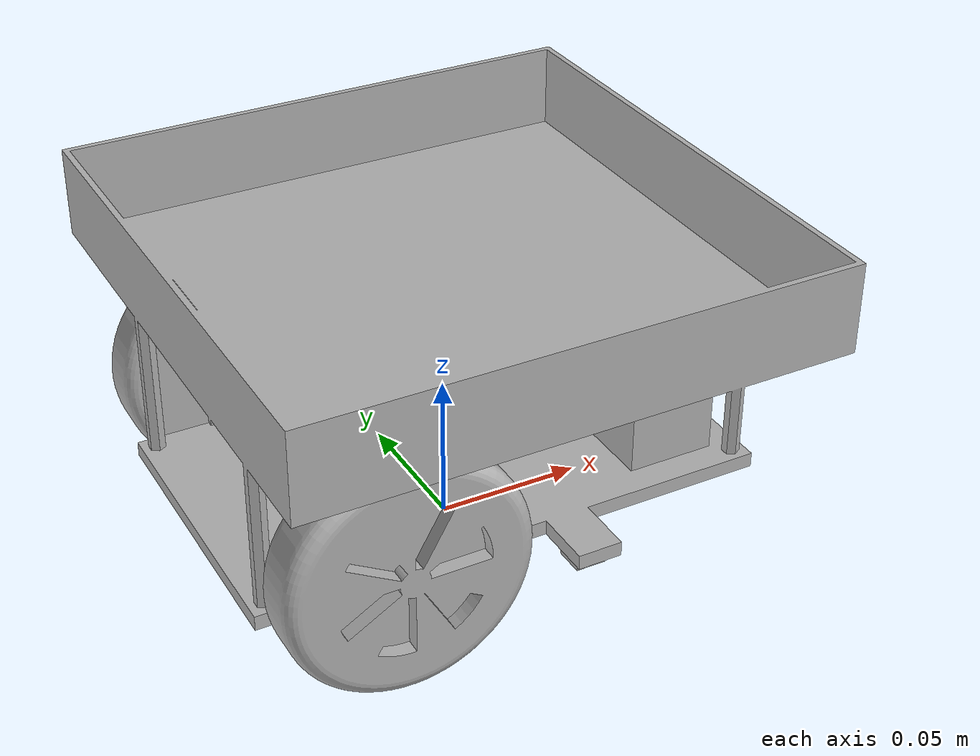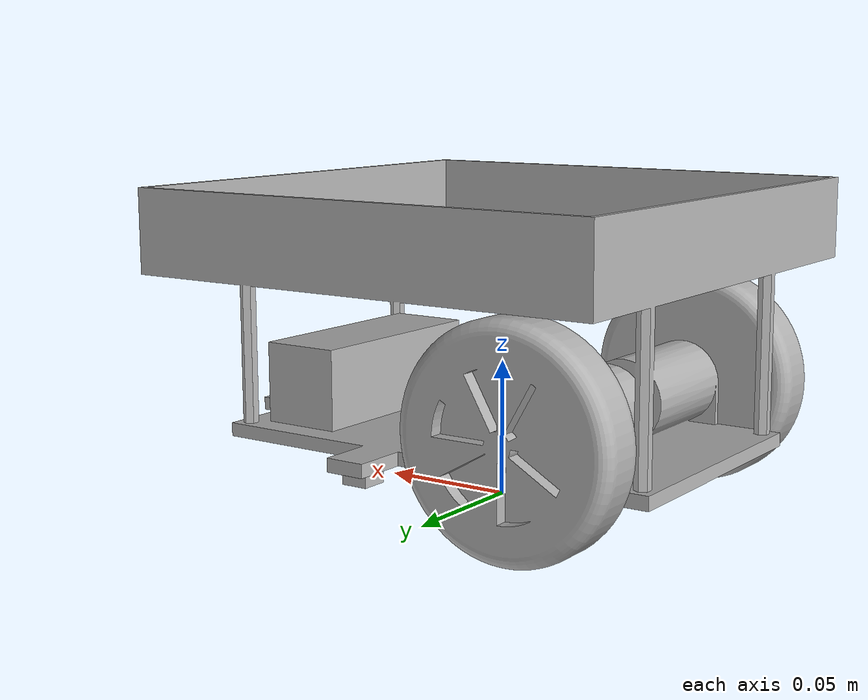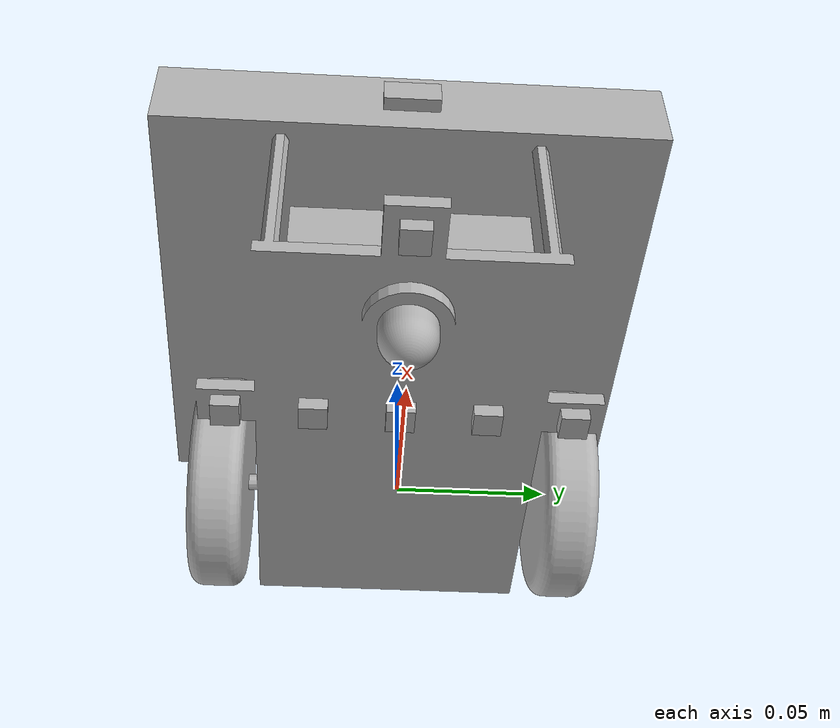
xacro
<?xml version="1.0" ?>
<robot name="autobot" xmlns:xacro="http://www.ros.org/wiki/xacro">

<xacro:include filename="$(find autobot_description)/urdf/materials.xacro" />
<xacro:include filename="$(find autobot_description)/urdf/autobot.trans" />
<xacro:include filename="$(find autobot_description)/urdf/autobot.gazebo" />
<link name="base_link">
  <inertial>
    <origin rpy="0 0 0" xyz="-0.009568145355348395 -1.0098438175876538e-16 0.054020432435981744"/>
    <mass value="0.2864000453601699"/>
    <inertia ixx="0.000861" ixy="0.0" ixz="-2.9e-05" iyy="0.001138" iyz="-0.0" izz="0.001424"/>
  </inertial>
  <visual>
    <origin rpy="0 0 0" xyz="0 0 0"/>
    <geometry>
      <mesh filename="package://autobot_description/meshes/base_link.stl" scale="0.001 0.001 0.001"/>
    </geometry>
    <material name="silver"/>
  </visual>
  <collision>
    <origin rpy="0 0 0" xyz="0 0 0"/>
    <geometry>
      <mesh filename="package://autobot_description/meshes/base_link.stl" scale="0.001 0.001 0.001"/>
    </geometry>
  </collision>
</link>

<link name="right_wheel_1">
  <inertial>
    <origin rpy="0 0 0" xyz="0.0 -0.009620772373434651 0.0"/>
    <mass value="0.08667330868237295"/>
    <inertia ixx="3.7e-05" ixy="0.0" ixz="0.0" iyy="7e-05" iyz="-0.0" izz="3.7e-05"/>
  </inertial>
  <visual>
    <origin rpy="0 0 0" xyz="0.0475 0.055 -0.04"/>
    <geometry>
      <mesh filename="package://autobot_description/meshes/right_wheel_1.stl" scale="0.001 0.001 0.001"/>
    </geometry>
    <material name="silver"/>
  </visual>
  <collision>
    <origin rpy="0 0 0" xyz="0.0475 0.055 -0.04"/>
    <geometry>
      <mesh filename="package://autobot_description/meshes/right_wheel_1.stl" scale="0.001 0.001 0.001"/>
    </geometry>
  </collision>
</link>

<link name="left_wheel_1">
  <inertial>
    <origin rpy="0 0 0" xyz="0.0 0.009620772373434651 0.0"/>
    <mass value="0.08667330868237297"/>
    <inertia ixx="3.7e-05" ixy="-0.0" ixz="0.0" iyy="7e-05" iyz="0.0" izz="3.7e-05"/>
  </inertial>
  <visual>
    <origin rpy="0 0 0" xyz="0.0475 -0.055 -0.04"/>
    <geometry>
      <mesh filename="package://autobot_description/meshes/left_wheel_1.stl" scale="0.001 0.001 0.001"/>
    </geometry>
    <material name="silver"/>
  </visual>
  <collision>
    <origin rpy="0 0 0" xyz="0.0475 -0.055 -0.04"/>
    <geometry>
      <mesh filename="package://autobot_description/meshes/left_wheel_1.stl" scale="0.001 0.001 0.001"/>
    </geometry>
  </collision>
</link>

<link name="caster_1">
  <inertial>
    <origin rpy="0 0 0" xyz="1.3877787807814457e-17 2.4232797573055368e-18 -0.006071428571428568"/>
    <mass value="0.028771752719126516"/>
    <inertia ixx="1e-06" ixy="0.0" ixz="0.0" iyy="1e-06" iyz="0.0" izz="1e-06"/>
  </inertial>
  <visual>
    <origin rpy="0 0 0" xyz="-0.0625 -0.0 -0.015"/>
    <geometry>
      <mesh filename="package://autobot_description/meshes/caster_1.stl" scale="0.001 0.001 0.001"/>
    </geometry>
    <material name="silver"/>
  </visual>
  <collision>
    <origin rpy="0 0 0" xyz="-0.0625 -0.0 -0.015"/>
    <geometry>
      <mesh filename="package://autobot_description/meshes/caster_1.stl" scale="0.001 0.001 0.001"/>
    </geometry>
  </collision>
</link>

<link name="battery_1">
  <inertial>
    <origin rpy="0 0 0" xyz="0.0 0.0 0.015"/>
    <mass value="0.5651999999999999"/>
    <inertia ixx="0.000344" ixy="0.0" ixz="-0.0" iyy="8.5e-05" iyz="0.0" izz="0.000344"/>
  </inertial>
  <visual>
    <origin rpy="0 0 0" xyz="-0.0625 -0.0 -0.025"/>
    <geometry>
      <mesh filename="package://autobot_description/meshes/battery_1.stl" scale="0.001 0.001 0.001"/>
    </geometry>
    <material name="silver"/>
  </visual>
  <collision>
    <origin rpy="0 0 0" xyz="-0.0625 -0.0 -0.025"/>
    <geometry>
      <mesh filename="package://autobot_description/meshes/battery_1.stl" scale="0.001 0.001 0.001"/>
    </geometry>
  </collision>
</link>

<link name="forward_sensor_1">
  <inertial>
    <origin rpy="0 0 0" xyz="0.0025000000000000022 0.0 0.0"/>
    <mass value="0.00785"/>
    <inertia ixx="0.0" ixy="0.0" ixz="0.0" iyy="0.0" iyz="0.0" izz="0.0"/>
  </inertial>
  <visual>
    <origin rpy="0 0 0" xyz="-0.09 -0.0 -0.1"/>
    <geometry>
      <mesh filename="package://autobot_description/meshes/forward_sensor_1.stl" scale="0.001 0.001 0.001"/>
    </geometry>
    <material name="silver"/>
  </visual>
  <collision>
    <origin rpy="0 0 0" xyz="-0.09 -0.0 -0.1"/>
    <geometry>
      <mesh filename="package://autobot_description/meshes/forward_sensor_1.stl" scale="0.001 0.001 0.001"/>
    </geometry>
  </collision>
</link>

<link name="box_sensor_1">
  <inertial>
    <origin rpy="0 0 0" xyz="0.0024999999999999883 0.0 0.000999999999999987"/>
    <mass value="0.00785"/>
    <inertia ixx="0.0" ixy="0.0" ixz="0.0" iyy="0.0" iyz="0.0" izz="0.0"/>
  </inertial>
  <visual>
    <origin rpy="0 0 0" xyz="0.088 -0.0 -0.1"/>
    <geometry>
      <mesh filename="package://autobot_description/meshes/box_sensor_1.stl" scale="0.001 0.001 0.001"/>
    </geometry>
    <material name="silver"/>
  </visual>
  <collision>
    <origin rpy="0 0 0" xyz="0.088 -0.0 -0.1"/>
    <geometry>
      <mesh filename="package://autobot_description/meshes/box_sensor_1.stl" scale="0.001 0.001 0.001"/>
    </geometry>
  </collision>
</link>

<link name="color_sensor_1">
  <inertial>
    <origin rpy="0 0 0" xyz="0.0 -1.7763568394002505e-17 -0.0024999999999999988"/>
    <mass value="0.003925"/>
    <inertia ixx="0.0" ixy="-0.0" ixz="0.0" iyy="0.0" iyz="-0.0" izz="0.0"/>
  </inertial>
  <visual>
    <origin rpy="0 0 0" xyz="-0.0975 0.0 -0.02"/>
    <geometry>
      <mesh filename="package://autobot_description/meshes/color_sensor_1.stl" scale="0.001 0.001 0.001"/>
    </geometry>
    <material name="silver"/>
  </visual>
  <collision>
    <origin rpy="0 0 0" xyz="-0.0975 0.0 -0.02"/>
    <geometry>
      <mesh filename="package://autobot_description/meshes/color_sensor_1.stl" scale="0.001 0.001 0.001"/>
    </geometry>
  </collision>
</link>

<link name="middle_sensor_1">
  <inertial>
    <origin rpy="0 0 0" xyz="0.0 -1.7763568394002505e-17 -0.0024999999999999988"/>
    <mass value="0.003925"/>
    <inertia ixx="0.0" ixy="-0.0" ixz="0.0" iyy="0.0" iyz="-0.0" izz="0.0"/>
  </inertial>
  <visual>
    <origin rpy="0 0 0" xyz="-0.0175 0.0 -0.02"/>
    <geometry>
      <mesh filename="package://autobot_description/meshes/middle_sensor_1.stl" scale="0.001 0.001 0.001"/>
    </geometry>
    <material name="silver"/>
  </visual>
  <collision>
    <origin rpy="0 0 0" xyz="-0.0175 0.0 -0.02"/>
    <geometry>
      <mesh filename="package://autobot_description/meshes/middle_sensor_1.stl" scale="0.001 0.001 0.001"/>
    </geometry>
  </collision>
</link>

<link name="left_sensor_1">
  <inertial>
    <origin rpy="0 0 0" xyz="0.0 0.0 -0.0024999999999999988"/>
    <mass value="0.003925"/>
    <inertia ixx="0.0" ixy="0.0" ixz="0.0" iyy="0.0" iyz="0.0" izz="0.0"/>
  </inertial>
  <visual>
    <origin rpy="0 0 0" xyz="-0.0175 -0.03 -0.02"/>
    <geometry>
      <mesh filename="package://autobot_description/meshes/left_sensor_1.stl" scale="0.001 0.001 0.001"/>
    </geometry>
    <material name="silver"/>
  </visual>
  <collision>
    <origin rpy="0 0 0" xyz="-0.0175 -0.03 -0.02"/>
    <geometry>
      <mesh filename="package://autobot_description/meshes/left_sensor_1.stl" scale="0.001 0.001 0.001"/>
    </geometry>
  </collision>
</link>

<link name="right_sensor_1">
  <inertial>
    <origin rpy="0 0 0" xyz="0.0 0.0 -0.0024999999999999988"/>
    <mass value="0.003925"/>
    <inertia ixx="0.0" ixy="-0.0" ixz="0.0" iyy="0.0" iyz="-0.0" izz="0.0"/>
  </inertial>
  <visual>
    <origin rpy="0 0 0" xyz="-0.0175 0.03 -0.02"/>
    <geometry>
      <mesh filename="package://autobot_description/meshes/right_sensor_1.stl" scale="0.001 0.001 0.001"/>
    </geometry>
    <material name="silver"/>
  </visual>
  <collision>
    <origin rpy="0 0 0" xyz="-0.0175 0.03 -0.02"/>
    <geometry>
      <mesh filename="package://autobot_description/meshes/right_sensor_1.stl" scale="0.001 0.001 0.001"/>
    </geometry>
  </collision>
</link>

<link name="extreme_left_sensor_1">
  <inertial>
    <origin rpy="0 0 0" xyz="0.0 0.0 -0.0024999999999999988"/>
    <mass value="0.003925"/>
    <inertia ixx="0.0" ixy="0.0" ixz="0.0" iyy="0.0" iyz="0.0" izz="0.0"/>
  </inertial>
  <visual>
    <origin rpy="0 0 0" xyz="-0.0175 -0.06 -0.02"/>
    <geometry>
      <mesh filename="package://autobot_description/meshes/extreme_left_sensor_1.stl" scale="0.001 0.001 0.001"/>
    </geometry>
    <material name="silver"/>
  </visual>
  <collision>
    <origin rpy="0 0 0" xyz="-0.0175 -0.06 -0.02"/>
    <geometry>
      <mesh filename="package://autobot_description/meshes/extreme_left_sensor_1.stl" scale="0.001 0.001 0.001"/>
    </geometry>
  </collision>
</link>

<link name="extreme_right_sensor_1">
  <inertial>
    <origin rpy="0 0 0" xyz="0.0 0.0 -0.0024999999999999988"/>
    <mass value="0.003925"/>
    <inertia ixx="0.0" ixy="-0.0" ixz="0.0" iyy="0.0" iyz="-0.0" izz="0.0"/>
  </inertial>
  <visual>
    <origin rpy="0 0 0" xyz="-0.0175 0.06 -0.02"/>
    <geometry>
      <mesh filename="package://autobot_description/meshes/extreme_right_sensor_1.stl" scale="0.001 0.001 0.001"/>
    </geometry>
    <material name="silver"/>
  </visual>
  <collision>
    <origin rpy="0 0 0" xyz="-0.0175 0.06 -0.02"/>
    <geometry>
      <mesh filename="package://autobot_description/meshes/extreme_right_sensor_1.stl" scale="0.001 0.001 0.001"/>
    </geometry>
  </collision>
</link>

<joint name="right_motor" type="continuous">
  <origin rpy="0 0 0" xyz="-0.0475 -0.055 0.04"/>
  <parent link="base_link"/>
  <child link="right_wheel_1"/>
  <axis xyz="0.0 -1.0 0.0"/>
</joint>

<joint name="left_motor" type="continuous">
  <origin rpy="0 0 0" xyz="-0.0475 0.055 0.04"/>
  <parent link="base_link"/>
  <child link="left_wheel_1"/>
  <axis xyz="0.0 1.0 0.0"/>
</joint>

<joint name="caster_joint" type="fixed">
  <origin rpy="0 0 0" xyz="0.0625 0.0 0.015"/>
  <parent link="base_link"/>
  <child link="caster_1"/>
</joint>

<joint name="battery_joint" type="fixed">
  <origin rpy="0 0 0" xyz="0.0625 0.0 0.025"/>
  <parent link="base_link"/>
  <child link="battery_1"/>
</joint>

<joint name="frontsensor_joint" type="fixed">
  <origin rpy="0 0 0" xyz="0.09 0.0 0.1"/>
  <parent link="base_link"/>
  <child link="forward_sensor_1"/>
</joint>

<joint name="boxsensor_joint" type="fixed">
  <origin rpy="0 0 0" xyz="-0.088 0.0 0.1"/>
  <parent link="base_link"/>
  <child link="box_sensor_1"/>
</joint>

<joint name="colorsensor_joint" type="fixed">
  <origin rpy="0 0 0" xyz="0.0975 0.0 0.02"/>
  <parent link="base_link"/>
  <child link="color_sensor_1"/>
</joint>

<joint name="middlesensor_joint" type="fixed">
  <origin rpy="0 0 0" xyz="0.0175 0.0 0.02"/>
  <parent link="base_link"/>
  <child link="middle_sensor_1"/>
</joint>

<joint name="leftsensor_joint" type="fixed">
  <origin rpy="0 0 0" xyz="0.0175 0.03 0.02"/>
  <parent link="base_link"/>
  <child link="left_sensor_1"/>
</joint>

<joint name="rightsensor_joint" type="fixed">
  <origin rpy="0 0 0" xyz="0.0175 -0.03 0.02"/>
  <parent link="base_link"/>
  <child link="right_sensor_1"/>
</joint>

<joint name="extremeleftsensor_joint" type="fixed">
  <origin rpy="0 0 0" xyz="0.0175 0.06 0.02"/>
  <parent link="base_link"/>
  <child link="extreme_left_sensor_1"/>
</joint>

<joint name="extremerightsensor_joint" type="fixed">
  <origin rpy="0 0 0" xyz="0.0175 -0.06 0.02"/>
  <parent link="base_link"/>
  <child link="extreme_right_sensor_1"/>
</joint>

</robot>

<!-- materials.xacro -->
<robot name="autobot" xmlns:xacro="http://www.ros.org/wiki/xacro" >

<material name="silver">
  <color rgba="0.700 0.700 0.700 1.000"/>
</material>

</robot>

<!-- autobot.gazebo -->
<robot name="autobot" xmlns:xacro="http://www.ros.org/wiki/xacro" >

<xacro:property name="body_color" value="Gazebo/Silver" />

<gazebo>
  <plugin filename="libgazebo_ros_control.so" name="control"/>
</gazebo>
<gazebo reference="base_link">
  <material>${body_color}</material>
  <mu1>0.2</mu1>
  <mu2>0.2</mu2>
  <selfCollide>true</selfCollide>
  <gravity>true</gravity>
</gazebo>

<gazebo reference="right_wheel_1">
  <material>${body_color}</material>
  <mu1>0.2</mu1>
  <mu2>0.2</mu2>
  <selfCollide>true</selfCollide>
</gazebo>

<gazebo reference="left_wheel_1">
  <material>${body_color}</material>
  <mu1>0.2</mu1>
  <mu2>0.2</mu2>
  <selfCollide>true</selfCollide>
</gazebo>

<gazebo reference="caster_1">
  <material>${body_color}</material>
  <mu1>0.2</mu1>
  <mu2>0.2</mu2>
  <selfCollide>true</selfCollide>
</gazebo>

<gazebo reference="battery_1">
  <material>${body_color}</material>
  <mu1>0.2</mu1>
  <mu2>0.2</mu2>
  <selfCollide>true</selfCollide>
</gazebo>

<gazebo reference="forward_sensor_1">
  <material>${body_color}</material>
  <mu1>0.2</mu1>
  <mu2>0.2</mu2>
  <selfCollide>true</selfCollide>
</gazebo>

<gazebo reference="box_sensor_1">
  <material>${body_color}</material>
  <mu1>0.2</mu1>
  <mu2>0.2</mu2>
  <selfCollide>true</selfCollide>
</gazebo>

<gazebo reference="color_sensor_1">
  <material>${body_color}</material>
  <mu1>0.2</mu1>
  <mu2>0.2</mu2>
  <selfCollide>true</selfCollide>
</gazebo>

<gazebo reference="middle_sensor_1">
  <material>${body_color}</material>
  <mu1>0.2</mu1>
  <mu2>0.2</mu2>
  <selfCollide>true</selfCollide>
</gazebo>

<gazebo reference="left_sensor_1">
  <material>${body_color}</material>
  <mu1>0.2</mu1>
  <mu2>0.2</mu2>
  <selfCollide>true</selfCollide>
</gazebo>

<gazebo reference="right_sensor_1">
  <material>${body_color}</material>
  <mu1>0.2</mu1>
  <mu2>0.2</mu2>
  <selfCollide>true</selfCollide>
</gazebo>

<gazebo reference="extreme_left_sensor_1">
  <material>${body_color}</material>
  <mu1>0.2</mu1>
  <mu2>0.2</mu2>
  <selfCollide>true</selfCollide>
</gazebo>

<gazebo reference="extreme_right_sensor_1">
  <material>${body_color}</material>
  <mu1>0.2</mu1>
  <mu2>0.2</mu2>
  <selfCollide>true</selfCollide>
</gazebo>

</robot>
